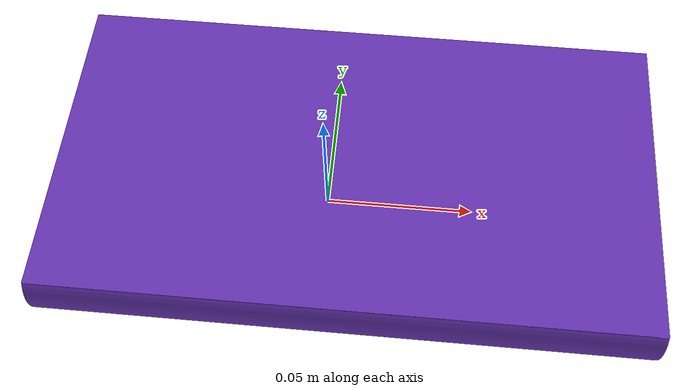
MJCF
<mujoco model="top_watertight_tiny">
  <default>
    <default group="2" type="mesh" contype="0" conaffinity="0">
      <geom group="2" type="mesh" contype="0" conaffinity="0"/>
    </default>
    <default group="3" type="mesh">
      <geom group="3" type="mesh"/>
    </default>
  </default>
  <asset>
    <mesh file="top_watertight_tiny.obj"/>
    <mesh file="top_watertight_tiny_collision_0.obj"/>
    <mesh file="top_watertight_tiny_collision_1.obj"/>
  </asset>
  <worldbody>
    <body name="top_watertight_tiny">
      <freejoint/>
      <geom mesh="top_watertight_tiny" group="2" type="mesh" rgba="0.4 0.2 0.7 1" contype="0" conaffinity="0"/>
      <geom mesh="top_watertight_tiny_collision_0" rgba="0.6249519013240877 0.22967107554418897 0.22431948361421494 1" group="3" type="mesh"/>
      <geom mesh="top_watertight_tiny_collision_1" rgba="0.7166945718089933 0.21651570821460941 0.5562116647643184 1" group="3" type="mesh"/>
    </body>
  </worldbody>
</mujoco>
